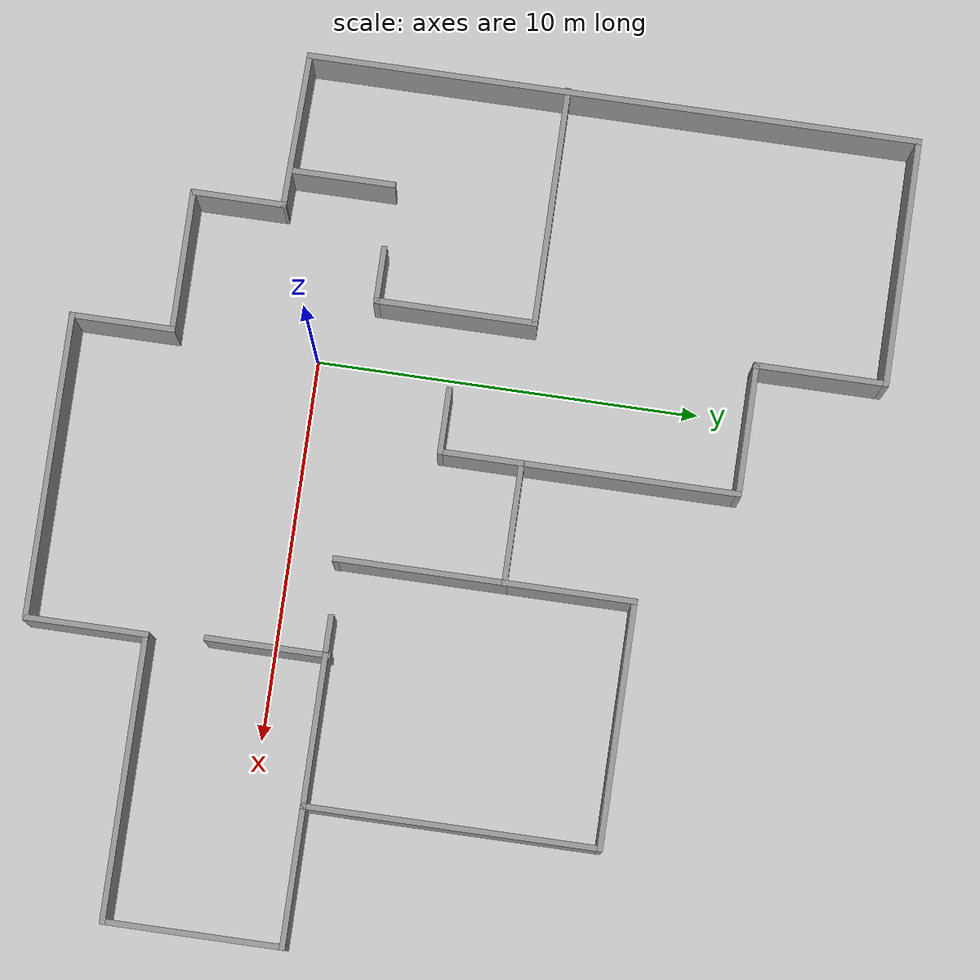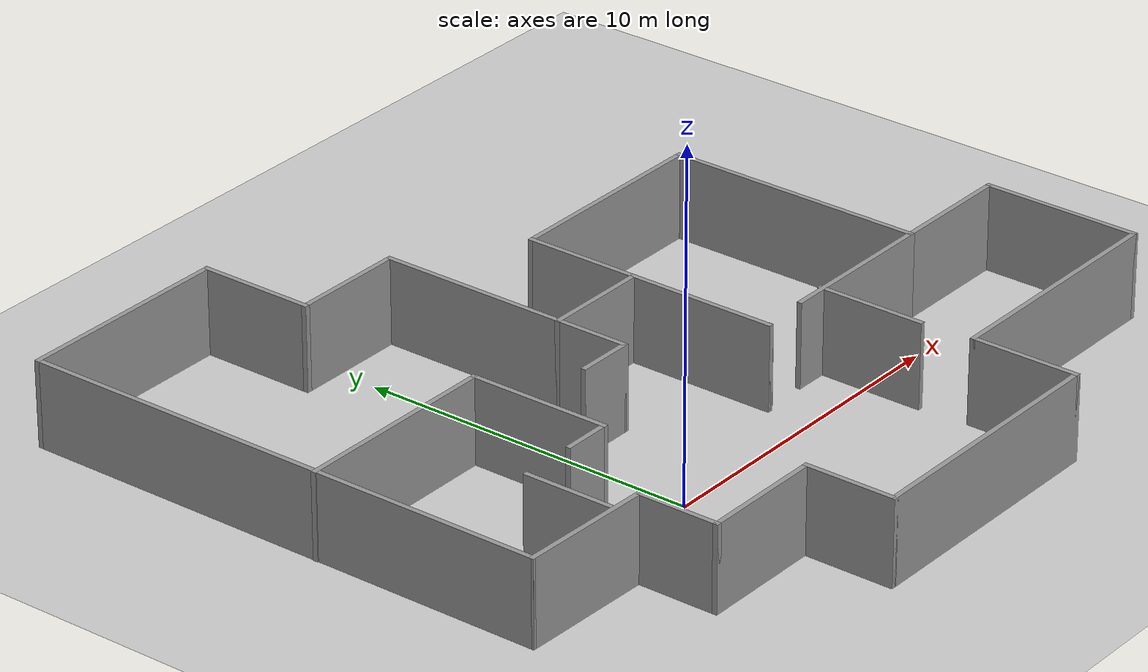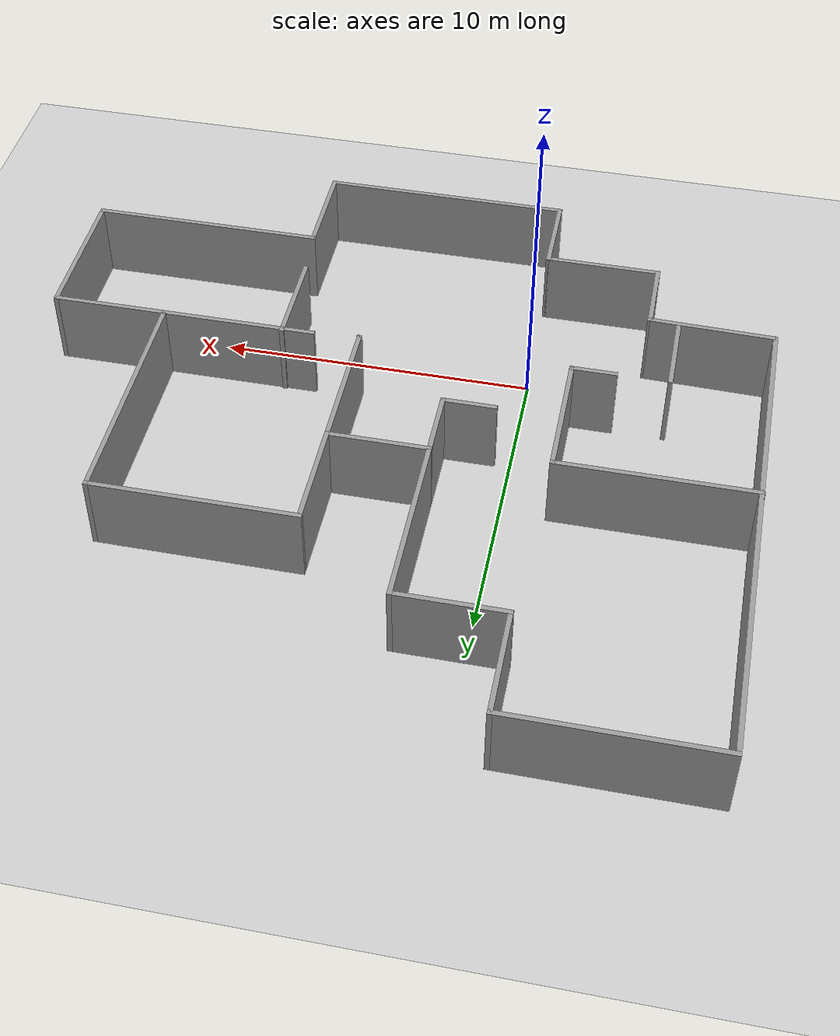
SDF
<sdf version="1.7">
 <world name="default">
  <light name="sun" type="directional">
   <cast_shadows>0</cast_shadows>
   <pose>0 0 10 0 -0 0</pose>
   <diffuse>0.8 0.8 0.8 1</diffuse>
   <specular>0.2 0.2 0.2 1</specular>
   <attenuation>
    <range>1000</range>
    <constant>0.9</constant>
    <linear>0.01</linear>
    <quadratic>0.001</quadratic>
   </attenuation>
   <direction>-0.5 0.1 -0.9</direction>
   <spot><inner_angle>0</inner_angle><outer_angle>0</outer_angle><falloff>0</falloff></spot>
  </light>
  <model name="ground_plane">
   <static>1</static>
   <link name="link">
    <collision name="collision">
     <geometry><plane><normal>0 0 1</normal><size>100 100</size></plane></geometry>
     <surface>
      <contact><collide_bitmask>65535</collide_bitmask></contact>
      <friction><ode><mu>100</mu><mu2>50</mu2></ode></friction>
     </surface>
    </collision>
    <visual name="visual">
     <cast_shadows>0</cast_shadows>
     <geometry><plane><normal>0 0 1</normal><size>100 100</size></plane></geometry>
     <material>
      <script><uri>file://media/materials/scripts/gazebo.material</uri><name>Gazebo/Grey</name></script>
     </material>
    </visual>
   </link>
  </model>
  <gravity>0 0 -9.8</gravity>
  <magnetic_field>6e-06 2.3e-05 -4.2e-05</magnetic_field>
  <atmosphere type="adiabatic"/>
  <physics type="ode">
   <max_step_size>0.005</max_step_size>
   <real_time_factor>1</real_time_factor>
   <real_time_update_rate>200</real_time_update_rate>
  </physics>
  <scene><ambient>0.4 0.4 0.4 1</ambient><background>0.7 0.7 0.7 1</background><shadows>0</shadows></scene>
  <spherical_coordinates>
   <surface_model>EARTH_WGS84</surface_model>
   <latitude_deg>0</latitude_deg>
   <longitude_deg>0</longitude_deg>
   <elevation>0</elevation>
   <heading_deg>0</heading_deg>
  </spherical_coordinates>
  <model name="my_home">
   <pose>3.81211 4.15 0 0 -0 0</pose>
   <link name="Wall_1">
    <collision name="Wall_1_Collision">
     <geometry><box><size>3.75 0.15 2.5</size></box></geometry>
     <pose>0 0 1.25 0 -0 0</pose>
    </collision>
    <visual name="Wall_1_Visual">
     <pose>0 0 1.25 0 -0 0</pose>
     <geometry><box><size>3.75 0.15 2.5</size></box></geometry>
     <material>
      <script><uri>file://media/materials/scripts/gazebo.material</uri><name>Gazebo/Grey</name></script>
      <ambient>1 1 1 1</ambient>
     </material>
     <meta><layer>0</layer></meta>
    </visual>
    <pose>-5.61211 -7.85 0 0 -0 0</pose>
   </link>
   <link name="Wall_10">
    <collision name="Wall_10_Collision">
     <geometry><box><size>3.5 0.15 2.5</size></box></geometry>
     <pose>0 0 1.25 0 -0 0</pose>
    </collision>
    <visual name="Wall_10_Visual">
     <pose>0 0 1.25 0 -0 0</pose>
     <geometry><box><size>3.5 0.15 2.5</size></box></geometry>
     <material>
      <script><uri>file://media/materials/scripts/gazebo.material</uri><name>Gazebo/Grey</name></script>
      <ambient>1 1 1 1</ambient>
     </material>
     <meta><layer>0</layer></meta>
    </visual>
    <pose>1.43789 3.175 0 0 -0 -1.5708</pose>
   </link>
   <link name="Wall_11">
    <collision name="Wall_11_Collision">
     <geometry><box><size>3.25 0.15 2.5</size></box></geometry>
     <pose>0 0 1.25 0 -0 0</pose>
    </collision>
    <visual name="Wall_11_Visual">
     <pose>0 0 1.25 0 -0 0</pose>
     <geometry><box><size>3.25 0.15 2.5</size></box></geometry>
     <material>
      <script><uri>file://media/materials/scripts/gazebo.material</uri><name>Gazebo/Grey</name></script>
      <ambient>1 1 1 1</ambient>
     </material>
     <meta><layer>0</layer></meta>
    </visual>
    <pose>-0.112106 1.5 0 0 -0 3.14159</pose>
   </link>
   <link name="Wall_12">
    <collision name="Wall_12_Collision">
     <geometry><box><size>5.75 0.15 2.5</size></box></geometry>
     <pose>0 0 1.25 0 -0 0</pose>
    </collision>
    <visual name="Wall_12_Visual">
     <pose>0 0 1.25 0 -0 0</pose>
     <geometry><box><size>5.75 0.15 2.5</size></box></geometry>
     <material>
      <script><uri>file://media/materials/scripts/gazebo.material</uri><name>Gazebo/Grey</name></script>
      <ambient>1 1 1 1</ambient>
     </material>
     <meta><layer>0</layer></meta>
    </visual>
    <pose>-1.66211 4.3 0 0 -0 1.5708</pose>
   </link>
   <link name="Wall_13">
    <collision name="Wall_13_Collision">
     <geometry><box><size>3.5 0.15 2.5</size></box></geometry>
     <pose>0 0 1.25 0 -0 0</pose>
    </collision>
    <visual name="Wall_13_Visual">
     <pose>0 0 1.25 0 -0 0</pose>
     <geometry><box><size>3.5 0.15 2.5</size></box></geometry>
     <material>
      <script><uri>file://media/materials/scripts/gazebo.material</uri><name>Gazebo/Grey</name></script>
      <ambient>1 1 1 1</ambient>
     </material>
     <meta><layer>0</layer></meta>
    </visual>
    <pose>-3.33711 7.1 0 0 -0 3.14159</pose>
   </link>
   <link name="Wall_14">
    <collision name="Wall_14_Collision">
     <geometry><box><size>3.5 0.15 2.5</size></box></geometry>
     <pose>0 0 1.25 0 -0 0</pose>
    </collision>
    <visual name="Wall_14_Visual">
     <pose>0 0 1.25 0 -0 0</pose>
     <geometry><box><size>3.5 0.15 2.5</size></box></geometry>
     <material>
      <script><uri>file://media/materials/scripts/gazebo.material</uri><name>Gazebo/Grey</name></script>
      <ambient>1 1 1 1</ambient>
     </material>
     <meta><layer>0</layer></meta>
    </visual>
    <pose>-5.01211 8.775 0 0 -0 1.5708</pose>
   </link>
   <link name="Wall_15">
    <collision name="Wall_15_Collision">
     <geometry><box><size>6.5 0.15 2.5</size></box></geometry>
     <pose>0 0 1.25 0 -0 0</pose>
    </collision>
    <visual name="Wall_15_Visual">
     <pose>0 0 1.25 0 -0 0</pose>
     <geometry><box><size>6.5 0.15 2.5</size></box></geometry>
     <material>
      <script><uri>file://media/materials/scripts/gazebo.material</uri><name>Gazebo/Grey</name></script>
      <ambient>1 1 1 1</ambient>
     </material>
     <meta><layer>0</layer></meta>
    </visual>
    <pose>-8.18711 10.45 0 0 -0 3.14159</pose>
   </link>
   <link name="Wall_16">
    <collision name="Wall_16_Collision">
     <geometry><box><size>16 0.15 2.5</size></box></geometry>
     <pose>0 0 1.25 0 -0 0</pose>
    </collision>
    <visual name="Wall_16_Visual">
     <pose>0 0 1.25 0 -0 0</pose>
     <geometry><box><size>16 0.15 2.5</size></box></geometry>
     <material>
      <script><uri>file://media/materials/scripts/gazebo.material</uri><name>Gazebo/Grey</name></script>
      <ambient>1 1 1 1</ambient>
     </material>
     <meta><layer>0</layer></meta>
    </visual>
    <pose>-11.3621 2.525 0 0 -0 -1.5708</pose>
   </link>
   <link name="Wall_2">
    <collision name="Wall_2_Collision">
     <geometry><box><size>2.75 0.15 2.5</size></box></geometry>
     <pose>0 0 1.25 0 -0 0</pose>
    </collision>
    <visual name="Wall_2_Visual">
     <pose>0 0 1.25 0 -0 0</pose>
     <geometry><box><size>2.75 0.15 2.5</size></box></geometry>
     <material>
      <script><uri>file://media/materials/scripts/gazebo.material</uri><name>Gazebo/Grey</name></script>
      <ambient>1 1 1 1</ambient>
     </material>
     <meta><layer>0</layer></meta>
    </visual>
    <pose>-3.81211 -9.15 0 0 -0 -1.5708</pose>
   </link>
   <link name="Wall_20">
    <collision name="Wall_20_Collision">
     <geometry><box><size>2.5 0.15 2.5</size></box></geometry>
     <pose>0 0 1.25 0 -0 0</pose>
    </collision>
    <visual name="Wall_20_Visual">
     <pose>0 0 1.25 0 -0 0</pose>
     <geometry><box><size>2.5 0.15 2.5</size></box></geometry>
     <material>
      <script><uri>file://media/materials/scripts/gazebo.material</uri><name>Gazebo/Grey</name></script>
      <ambient>1 1 1 1</ambient>
     </material>
     <meta><layer>0</layer></meta>
    </visual>
    <pose>-7.41211 -6.675 0 0 -0 1.5708</pose>
   </link>
   <link name="Wall_22">
    <collision name="Wall_22_Collision">
     <geometry><box><size>4.10127 0.15 2.5</size></box></geometry>
     <pose>0 0 1.25 0 -0 0</pose>
    </collision>
    <visual name="Wall_22_Visual">
     <pose>0 0 1.25 0 -0 0</pose>
     <geometry><box><size>4.10127 0.15 2.5</size></box></geometry>
     <material>
      <script><uri>file://media/materials/scripts/gazebo.material</uri><name>Gazebo/Grey</name></script>
      <ambient>1 1 1 1</ambient>
     </material>
     <meta><layer>0</layer></meta>
    </visual>
    <pose>-9.38711 -5.45 0 0 -0 3.11628</pose>
   </link>
   <link name="Wall_25">
    <collision name="Wall_25_Collision">
     <geometry><box><size>6.25 0.15 2.5</size></box></geometry>
     <pose>0 0 1.25 0 -0 0</pose>
    </collision>
    <visual name="Wall_25_Visual">
     <pose>0 0 1.25 0 -0 0</pose>
     <geometry><box><size>6.25 0.15 2.5</size></box></geometry>
     <material>
      <script><uri>file://media/materials/scripts/gazebo.material</uri><name>Gazebo/Grey</name></script>
      <ambient>1 1 1 1</ambient>
     </material>
     <meta><layer>0</layer></meta>
    </visual>
    <pose>-8.33789 1.32245 0 0 -0 0</pose>
   </link>
   <link name="Wall_26">
    <collision name="Wall_26_Collision">
     <geometry><box><size>4.25 0.15 2.5</size></box></geometry>
     <pose>0 0 1.25 0 -0 0</pose>
    </collision>
    <visual name="Wall_26_Visual">
     <pose>0 0 1.25 0 -0 0</pose>
     <geometry><box><size>4.25 0.15 2.5</size></box></geometry>
     <material>
      <script><uri>file://media/materials/scripts/gazebo.material</uri><name>Gazebo/Grey</name></script>
      <ambient>1 1 1 1</ambient>
     </material>
     <meta><layer>0</layer></meta>
    </visual>
    <pose>-5.28789 -0.727555 0 0 -0 -1.5708</pose>
   </link>
   <link name="Wall_27">
    <collision name="Wall_27_Collision">
     <geometry><box><size>1.5 0.15 2.5</size></box></geometry>
     <pose>0 0 1.25 0 -0 0</pose>
    </collision>
    <visual name="Wall_27_Visual">
     <pose>0 0 1.25 0 -0 0</pose>
     <geometry><box><size>1.5 0.15 2.5</size></box></geometry>
     <material>
      <script><uri>file://media/materials/scripts/gazebo.material</uri><name>Gazebo/Grey</name></script>
      <ambient>1 1 1 1</ambient>
     </material>
     <meta><layer>0</layer></meta>
    </visual>
    <pose>-5.96289 -2.77755 0 0 -0 3.14159</pose>
   </link>
   <link name="Wall_29">
    <collision name="Wall_29_Collision">
     <geometry><box><size>2.75 0.15 2.5</size></box></geometry>
     <pose>0 0 1.25 0 -0 0</pose>
    </collision>
    <visual name="Wall_29_Visual">
     <pose>0 0 1.25 0 -0 0</pose>
     <geometry><box><size>2.75 0.15 2.5</size></box></geometry>
     <material>
      <script><uri>file://media/materials/scripts/gazebo.material</uri><name>Gazebo/Grey</name></script>
      <ambient>1 1 1 1</ambient>
     </material>
     <meta><layer>0</layer></meta>
    </visual>
    <pose>-8.32887 -4.10059 0 0 -0 -1.5708</pose>
   </link>
   <link name="Wall_3">
    <collision name="Wall_3_Collision">
     <geometry><box><size>8 0.15 2.5</size></box></geometry>
     <pose>0 0 1.25 0 -0 0</pose>
    </collision>
    <visual name="Wall_3_Visual">
     <pose>0 0 1.25 0 -0 0</pose>
     <geometry><box><size>8 0.15 2.5</size></box></geometry>
     <material>
      <script><uri>file://media/materials/scripts/gazebo.material</uri><name>Gazebo/Grey</name></script>
      <ambient>1 1 1 1</ambient>
     </material>
     <meta><layer>0</layer></meta>
    </visual>
    <pose>0.112894 -10.45 0 0 -0 0</pose>
   </link>
   <link name="Wall_31">
    <collision name="Wall_31_Collision">
     <geometry><box><size>2.25 0.15 2.5</size></box></geometry>
     <pose>0 0 1.25 0 -0 0</pose>
    </collision>
    <visual name="Wall_31_Visual">
     <pose>0 0 1.25 0 -0 0</pose>
     <geometry><box><size>2.25 0.15 2.5</size></box></geometry>
     <material>
      <script><uri>file://media/materials/scripts/gazebo.material</uri><name>Gazebo/Grey</name></script>
      <ambient>1 1 1 1</ambient>
     </material>
     <meta><layer>0</layer></meta>
    </visual>
    <pose>-1.66211 0.449999 0 0 -0 -1.5708</pose>
   </link>
   <link name="Wall_32">
    <collision name="Wall_32_Collision">
     <geometry><box><size>1.75 0.15 2.5</size></box></geometry>
     <pose>0 0 1.25 0 -0 0</pose>
    </collision>
    <visual name="Wall_32_Visual">
     <pose>0 0 1.25 0 -0 0</pose>
     <geometry><box><size>1.75 0.15 2.5</size></box></geometry>
     <material>
      <script><uri>file://media/materials/scripts/gazebo.material</uri><name>Gazebo/Grey</name></script>
      <ambient>1 1 1 1</ambient>
     </material>
     <meta><layer>0</layer></meta>
    </visual>
    <pose>-2.46211 -0.600001 0 0 -0 3.14159</pose>
   </link>
   <link name="Wall_34">
    <collision name="Wall_34_Collision">
     <geometry><box><size>4.5 0.15 2.5</size></box></geometry>
     <pose>0 0 1.25 0 -0 0</pose>
    </collision>
    <visual name="Wall_34_Visual">
     <pose>0 0 1.25 0 -0 0</pose>
     <geometry><box><size>4.5 0.15 2.5</size></box></geometry>
     <material>
      <script><uri>file://media/materials/scripts/gazebo.material</uri><name>Gazebo/Grey</name></script>
      <ambient>1 1 1 1</ambient>
     </material>
     <meta><layer>0</layer></meta>
    </visual>
    <pose>1.43789 -0.675001 0 0 -0 -1.5708</pose>
   </link>
   <link name="Wall_35">
    <collision name="Wall_35_Collision">
     <geometry><box><size>0.16 0.15 2.5</size></box></geometry>
     <pose>0 0 1.25 0 -0 0</pose>
    </collision>
    <visual name="Wall_35_Visual">
     <pose>0 0 1.25 0 -0 0</pose>
     <geometry><box><size>0.16 0.15 2.5</size></box></geometry>
     <material>
      <script><uri>file://media/materials/scripts/gazebo.material</uri><name>Gazebo/Grey</name></script>
      <ambient>1 1 1 1</ambient>
     </material>
     <meta><layer>0</layer></meta>
    </visual>
    <pose>1.44289 -2.85 0 0 -0 0</pose>
   </link>
   <link name="Wall_37">
    <collision name="Wall_37_Collision">
     <geometry><box><size>5 0.15 2.5</size></box></geometry>
     <pose>0 0 1.25 0 -0 0</pose>
    </collision>
    <visual name="Wall_37_Visual">
     <pose>0 0 1.25 0 -0 0</pose>
     <geometry><box><size>5 0.15 2.5</size></box></geometry>
     <material>
      <script><uri>file://media/materials/scripts/gazebo.material</uri><name>Gazebo/Grey</name></script>
      <ambient>1 1 1 1</ambient>
     </material>
     <meta><layer>0</layer></meta>
    </visual>
    <pose>5.36289 -2.75 0 0 -0 3.14159</pose>
   </link>
   <link name="Wall_39">
    <collision name="Wall_39_Collision">
     <geometry><box><size>3.25 0.15 2.5</size></box></geometry>
     <pose>0 0 1.25 0 -0 0</pose>
    </collision>
    <visual name="Wall_39_Visual">
     <pose>0 0 1.25 0 -0 0</pose>
     <geometry><box><size>3.25 0.15 2.5</size></box></geometry>
     <material>
      <script><uri>file://media/materials/scripts/gazebo.material</uri><name>Gazebo/Grey</name></script>
      <ambient>1 1 1 1</ambient>
     </material>
     <meta><layer>0</layer></meta>
    </visual>
    <pose>3.90722 -4.24418 0 0 -0 -1.5708</pose>
   </link>
   <link name="Wall_4">
    <collision name="Wall_4_Collision">
     <geometry><box><size>3.25 0.15 2.5</size></box></geometry>
     <pose>0 0 1.25 0 -0 0</pose>
    </collision>
    <visual name="Wall_4_Visual">
     <pose>0 0 1.25 0 -0 0</pose>
     <geometry><box><size>3.25 0.15 2.5</size></box></geometry>
     <material>
      <script><uri>file://media/materials/scripts/gazebo.material</uri><name>Gazebo/Grey</name></script>
      <ambient>1 1 1 1</ambient>
     </material>
     <meta><layer>0</layer></meta>
    </visual>
    <pose>4.03789 -8.9 0 0 -0 1.5708</pose>
   </link>
   <link name="Wall_5">
    <collision name="Wall_5_Collision">
     <geometry><box><size>7.5 0.15 2.5</size></box></geometry>
     <pose>0 0 1.25 0 -0 0</pose>
    </collision>
    <visual name="Wall_5_Visual">
     <pose>0 0 1.25 0 -0 0</pose>
     <geometry><box><size>7.5 0.15 2.5</size></box></geometry>
     <material>
      <script><uri>file://media/materials/scripts/gazebo.material</uri><name>Gazebo/Grey</name></script>
      <ambient>1 1 1 1</ambient>
     </material>
     <meta><layer>0</layer></meta>
    </visual>
    <pose>7.71289 -7.35 0 0 -0 0</pose>
   </link>
   <link name="Wall_6">
    <collision name="Wall_6_Collision">
     <geometry><box><size>4.75 0.15 2.5</size></box></geometry>
     <pose>0 0 1.25 0 -0 0</pose>
    </collision>
    <visual name="Wall_6_Visual">
     <pose>0 0 1.25 0 -0 0</pose>
     <geometry><box><size>4.75 0.15 2.5</size></box></geometry>
     <material>
      <script><uri>file://media/materials/scripts/gazebo.material</uri><name>Gazebo/Grey</name></script>
      <ambient>1 1 1 1</ambient>
     </material>
     <meta><layer>0</layer></meta>
    </visual>
    <pose>11.3879 -5.05 0 0 -0 1.5708</pose>
   </link>
   <link name="Wall_7">
    <collision name="Wall_7_Collision">
     <geometry><box><size>3.75 0.15 2.5</size></box></geometry>
     <pose>0 0 1.25 0 -0 0</pose>
    </collision>
    <visual name="Wall_7_Visual">
     <pose>0 0 1.25 0 -0 0</pose>
     <geometry><box><size>3.75 0.15 2.5</size></box></geometry>
     <material>
      <script><uri>file://media/materials/scripts/gazebo.material</uri><name>Gazebo/Grey</name></script>
      <ambient>1 1 1 1</ambient>
     </material>
     <meta><layer>0</layer></meta>
    </visual>
    <pose>9.58789 -2.75 0 0 -0 3.14159</pose>
   </link>
   <link name="Wall_8">
    <collision name="Wall_8_Collision">
     <geometry><box><size>7.75 0.15 2.5</size></box></geometry>
     <pose>0 0 1.25 0 -0 0</pose>
    </collision>
    <visual name="Wall_8_Visual">
     <pose>0 0 1.25 0 -0 0</pose>
     <geometry><box><size>7.75 0.15 2.5</size></box></geometry>
     <material>
      <script><uri>file://media/materials/scripts/gazebo.material</uri><name>Gazebo/Grey</name></script>
      <ambient>1 1 1 1</ambient>
     </material>
     <meta><layer>0</layer></meta>
    </visual>
    <pose>7.78789 1.05 0 0 -0 1.5708</pose>
   </link>
   <link name="Wall_9">
    <collision name="Wall_9_Collision">
     <geometry><box><size>6.5 0.15 2.5</size></box></geometry>
     <pose>0 0 1.25 0 -0 0</pose>
    </collision>
    <visual name="Wall_9_Visual">
     <pose>0 0 1.25 0 -0 0</pose>
     <geometry><box><size>6.5 0.15 2.5</size></box></geometry>
     <material>
      <script><uri>file://media/materials/scripts/gazebo.material</uri><name>Gazebo/Grey</name></script>
      <ambient>1 1 1 1</ambient>
     </material>
     <meta><layer>0</layer></meta>
    </visual>
    <pose>4.61289 4.85 0 0 -0 3.14159</pose>
   </link>
   <static>1</static>
  </model>
 </world>
</sdf>
